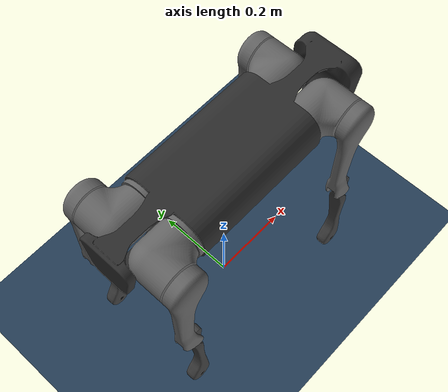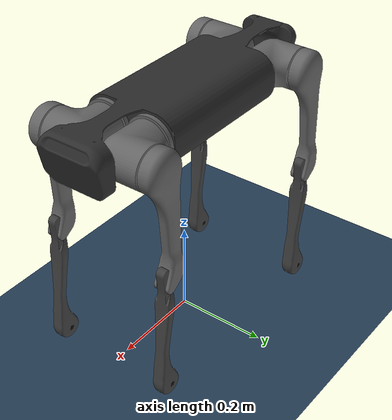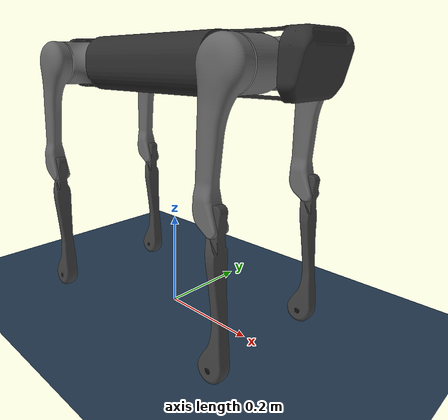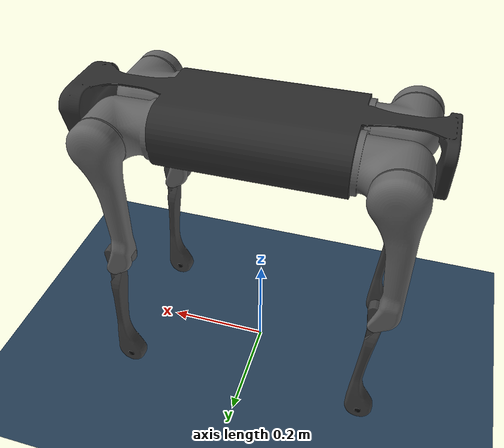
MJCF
<mujoco model="aliengo scene">
    <include file="aliengo.xml" />

    <statistic center="0 0 0.1" extent="0.8" />

    <visual>
        <headlight diffuse="0.6 0.6 0.6" ambient="0.3 0.3 0.3" specular="0 0 0" />
        <rgba haze="0.15 0.25 0.35 1" />
        <global azimuth="120" elevation="-20" />
    </visual>

    <asset>
        <texture type="skybox" builtin="gradient" rgb1="0.3 0.5 0.7" rgb2="0 0 0" width="512"
            height="3072" />
        <texture type="2d" name="groundplane" builtin="checker" mark="edge" rgb1="0.2 0.3 0.4"
            rgb2="0.1 0.2 0.3"
            markrgb="0.8 0.8 0.8" width="300" height="300" />
        <material name="groundplane" texture="groundplane" texuniform="true" texrepeat="5 5"
            reflectance="0.2" />
    </asset>

    <worldbody>
        <light pos="0 0 1.5" dir="0 0 -1" directional="true" />
        <geom name="floor" size="0 0 0.05" type="plane" material="groundplane" />
    </worldbody>
</mujoco>

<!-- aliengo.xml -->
<mujoco model="aliengo">
    <compiler angle="radian" meshdir="assets" autolimits="true" />

    <option timestep="0.002" integrator="implicitfast" cone="elliptic" impratio="100" />

    <default>
        <default class="aliengo">
            <geom friction="0.6" margin="0.001" condim="1" />
            <joint axis="0 1 0" damping="0" armature="0.01" frictionloss="0.1" />
            <position kp="50" kv="3" forcerange="-44.4 44.4" />
            <default class="abduction">
                <joint axis="1 0 0" range="-1.2217304763960306 1.2217304763960306" />
            </default>
            <default class="hip">
                <joint />
            </default>
            <default class="knee">
                <joint range="-2.775073510670984 -0.6457718232379019" />
            </default>
            <default class="visual">
                <geom type="mesh" contype="0" conaffinity="0" group="2" />
            </default>
            <default class="collision">
                <geom group="3" contype="0" conaffinity="1" condim="1" margin="0.001"
                    solref="0.005 1" solimp="0.9 0.95 0.001" friction="0.6 0.02 0.01"
                    material="collision_material" />
                <default class="hip_l">
                    <geom type="cylinder" size="0.046 0.0209" pos="0 0.083 0" quat="1 1 0 0" />
                </default>
                <default class="hip_r">
                    <geom type="cylinder" size="0.046 0.0209" pos="0 -0.083 0" quat="1 1 0 0" />
                </default>
                <default class="thigh">
                    <geom type="box" size="0.125 0.0187 0.0215" pos="0 0 -0.125" quat="1 0 1 0" />
                </default>
                <default class="calf">
                    <geom type="box" size="0.125 0.0104 0.008" pos="0 0 -0.125" quat="1 0 1 0" />
                </default>
                <default class="foot">
                    <geom type="sphere" size="0.0265" condim="6" priority="1" />
                </default>
            </default>
        </default>
    </default>

    <asset>
        <material name="collision_material" rgba="1.0 0.28 0.1 0.9" />
        <material name="carbon" rgba="0.18 0.18 0.18 1.0" specular="0.2" shininess="0.3" />
        <material name="leg_grey" rgba="0.4 0.4 0.4 1.0" specular="0.3" shininess="0.4" />
        <material name="calf_grey" rgba="0.251 0.251 0.251 1.0" specular="0.2" shininess="0.3" />
        <material name="foot_black" rgba="0.05 0.05 0.05 1.0" specular="0.1" shininess="0.2" />
        <mesh file="trunk.stl" />
        <mesh file="hip.stl" />
        <mesh file="thigh.stl" />
        <mesh file="thigh_mirror.stl" />
        <mesh file="calf.stl" scale="0.0254 0.0254 0.0254" />
    </asset>

    <worldbody>
        <light name="spotlight" mode="targetbodycom" target="trunk" pos="0 -1 2" />
        <body name="trunk" pos="0 0 0.5265" childclass="aliengo">
            <freejoint name="floating_base" />
            <camera name="tracking" mode="fixed" pos="-1 0 0.5" xyaxes="0 -1 0 0.6 0 1" fovy="60" />
            <site name="imu" pos="0 0 0" />
            <inertial pos="0.008811 0.003839 0.000273" mass="11.644"
                diaginertia="0.051944892 0.24693924 0.270948307" />
            <geom class="visual" material="carbon" mesh="trunk" />
            <geom class="collision" type="box" size="0.3235 0.075 0.056" />

            <body name="FR_hip" pos="0.2407 -0.051 0">
                <inertial pos="-0.022191 -0.015144 -1.5e-05" mass="1.993"
                    diaginertia="0.002446735 0.003925876 0.004148145" />
                <joint class="abduction" name="FR_hip_joint" />
                <geom class="visual" material="leg_grey" mesh="hip"
                    quat="6.123233995736766e-17 1 0 0" />
                <geom class="hip_r" />
                <body name="FR_thigh" pos="0 -0.0868 0">
                    <inertial pos="-0.005607 0.003877 -0.048199" mass="0.639"
                        diaginertia="0.004173855 0.004343802 0.000340136" />
                    <joint class="hip" name="FR_thigh_joint" />
                    <geom class="visual" material="leg_grey" mesh="thigh_mirror" />
                    <geom class="thigh" />
                    <body name="FR_calf" pos="0 0 -0.25">
                        <inertial pos="0.002781 6.3e-05 -0.142518" mass="0.207"
                            diaginertia="0.002129279 0.002141463 3.7583e-05" />
                        <joint class="knee" name="FR_calf_joint" />
                        <geom class="visual" material="calf_grey" mesh="calf" />
                        <geom class="calf" />
                        <body name="FR_foot" pos="0 0 -0.25">
                            <inertial pos="0 0 0" mass="0.06"
                                diaginertia="1.6854e-05 1.6854e-05 1.6854e-05" />
                            <geom name="FR_foot_collision" class="foot" />
                            <geom class="visual" material="foot_black" type="sphere" size="0.0165" />
                            <site name="FR" pos="0 0 0" type="sphere" size="0.0265" group="5" />
                        </body>
                    </body>
                </body>
            </body>

            <body name="FL_hip" pos="0.2407 0.051 0">
                <inertial pos="-0.022191 0.015144 -1.5e-05" mass="1.993"
                    diaginertia="0.002446735 0.003925876 0.004148145" />
                <joint class="abduction" name="FL_hip_joint" />
                <geom class="visual" material="leg_grey" mesh="hip" />
                <geom class="hip_l" />
                <body name="FL_thigh" pos="0 0.0868 0">
                    <inertial pos="-0.005607 -0.003877 -0.048199" mass="0.639"
                        diaginertia="0.004173855 0.004343802 0.000340136" />
                    <joint class="hip" name="FL_thigh_joint" />
                    <geom class="visual" material="leg_grey" mesh="thigh" />
                    <geom class="thigh" />
                    <body name="FL_calf" pos="0 0 -0.25">
                        <inertial pos="0.002781 6.3e-05 -0.142518" mass="0.207"
                            diaginertia="0.002129279 0.002141463 3.7583e-05" />
                        <joint class="knee" name="FL_calf_joint" />
                        <geom class="visual" material="calf_grey" mesh="calf" />
                        <geom class="calf" />
                        <body name="FL_foot" pos="0 0 -0.25">
                            <inertial pos="0 0 0" mass="0.06"
                                diaginertia="1.6854e-05 1.6854e-05 1.6854e-05" />
                            <geom name="FL_foot_collision" class="foot" />
                            <geom class="visual" material="foot_black" type="sphere" size="0.0165" />
                            <site name="FL" pos="0 0 0" type="sphere" size="0.0265" group="5" />
                        </body>
                    </body>
                </body>
            </body>

            <body name="RR_hip" pos="-0.2407 -0.051 0">
                <inertial pos="0.022191 -0.015144 -1.5e-05" mass="1.993"
                    diaginertia="0.002446735 0.003925876 0.004148145" />
                <joint class="abduction" name="RR_hip_joint" />
                <geom class="visual" material="leg_grey" mesh="hip"
                    quat="3.749399456654644e-33 6.123233995736766e-17 6.123233995736766e-17 -1" />
                <geom class="hip_r" />
                <body name="RR_thigh" pos="0 -0.0868 0">
                    <inertial pos="-0.005607 0.003877 -0.048199" mass="0.639"
                        diaginertia="0.004173855 0.004343802 0.000340136" />
                    <joint class="hip" name="RR_thigh_joint" />
                    <geom class="visual" material="leg_grey" mesh="thigh_mirror" />
                    <geom class="thigh" />
                    <body name="RR_calf" pos="0 0 -0.25">
                        <inertial pos="0.002781 6.3e-05 -0.142518" mass="0.207"
                            diaginertia="0.002129279 0.002141463 3.7583e-05" />
                        <joint class="knee" name="RR_calf_joint" />
                        <geom class="visual" material="calf_grey" mesh="calf" />
                        <geom class="calf" />
                        <body name="RR_foot" pos="0 0 -0.25">
                            <inertial pos="0 0 0" mass="0.06"
                                diaginertia="1.6854e-05 1.6854e-05 1.6854e-05" />
                            <geom name="RR_foot_collision" class="foot" />
                            <geom class="visual" material="foot_black" type="sphere" size="0.0165" />
                            <site name="RR" pos="0 0 0" type="sphere" size="0.0265" group="5" />
                        </body>
                    </body>
                </body>
            </body>

            <body name="RL_hip" pos="-0.2407 0.051 0">
                <inertial pos="0.022191 0.015144 -1.5e-05" mass="1.993"
                    diaginertia="0.002446735 0.003925876 0.004148145" />
                <joint class="abduction" name="RL_hip_joint" />
                <geom class="visual" material="leg_grey" mesh="hip"
                    quat="6.123233995736766e-17 0 1 0" />
                <geom class="hip_l" />
                <body name="RL_thigh" pos="0 0.0868 0">
                    <inertial pos="-0.005607 -0.003877 -0.048199" mass="0.639"
                        diaginertia="0.004173855 0.004343802 0.000340136" />
                    <joint class="hip" name="RL_thigh_joint" />
                    <geom class="visual" material="leg_grey" mesh="thigh" />
                    <geom class="thigh" />
                    <body name="RL_calf" pos="0 0 -0.25">
                        <inertial pos="0.002781 6.3e-05 -0.142518" mass="0.207"
                            diaginertia="0.002129279 0.002141463 3.7583e-05" />
                        <joint class="knee" name="RL_calf_joint" />
                        <geom class="visual" material="calf_grey" mesh="calf" />
                        <geom class="calf" />
                        <body name="RL_foot" pos="0 0 -0.25">
                            <inertial pos="0 0 0" mass="0.06"
                                diaginertia="1.6854e-05 1.6854e-05 1.6854e-05" />
                            <geom name="RL_foot_collision" class="foot" />
                            <geom class="visual" material="foot_black" type="sphere" size="0.0165" />
                            <site name="RL" pos="0 0 0" type="sphere" size="0.0265" group="5" />
                        </body>
                    </body>
                </body>
            </body>
        </body>
    </worldbody>

    <actuator>
        <position class="abduction" name="FR_hip" joint="FR_hip_joint" />
        <position class="hip" name="FR_thigh" joint="FR_thigh_joint" />
        <position class="knee" name="FR_calf" joint="FR_calf_joint" />
        <position class="abduction" name="FL_hip" joint="FL_hip_joint" />
        <position class="hip" name="FL_thigh" joint="FL_thigh_joint" />
        <position class="knee" name="FL_calf" joint="FL_calf_joint" />
        <position class="abduction" name="RR_hip" joint="RR_hip_joint" />
        <position class="hip" name="RR_thigh" joint="RR_thigh_joint" />
        <position class="knee" name="RR_calf" joint="RR_calf_joint" />
        <position class="abduction" name="RL_hip" joint="RL_hip_joint" />
        <position class="hip" name="RL_thigh" joint="RL_thigh_joint" />
        <position class="knee" name="RL_calf" joint="RL_calf_joint" />
    </actuator>

    <keyframe>
        <!-- home pose: base + joints in MuJoCo order (FR, FL, RR, RL). Position servos ->
         ctrl = the same joint targets, so the robot holds the home stance. -->
        <key name="home"
            qpos="0 0 0.5 1 0 0 0 -0.1 0.8 -1.5 0.1 0.8 -1.5 -0.1 1.0 -1.5 0.1 1.0 -1.5"
            ctrl="-0.1 0.8 -1.5 0.1 0.8 -1.5 -0.1 1.0 -1.5 0.1 1.0 -1.5" />
    </keyframe>
</mujoco>
